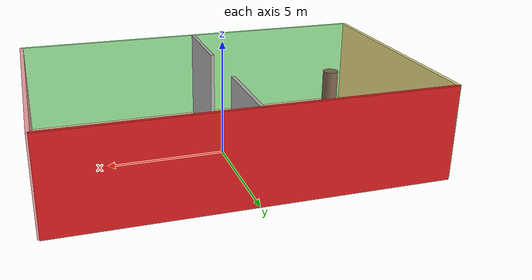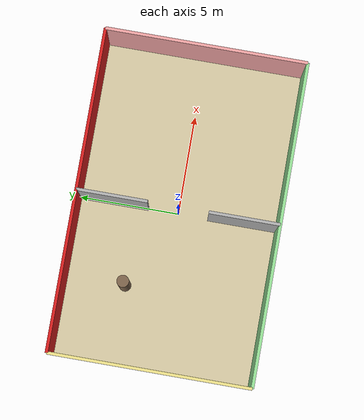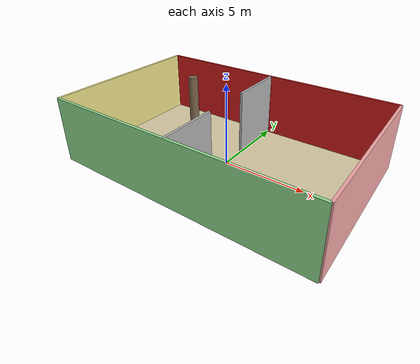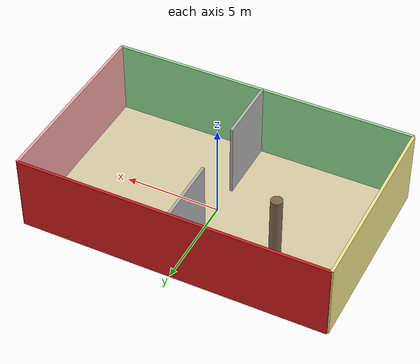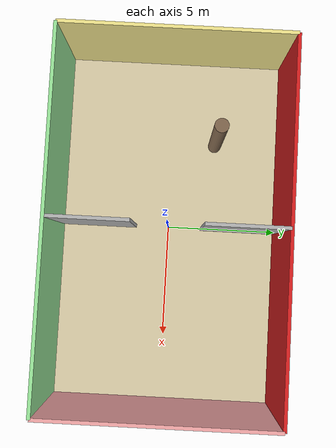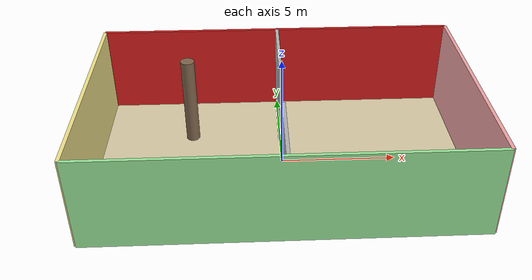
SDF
<sdf version="1.9">
 <world name="indoor_room">
  <physics name="1ms" type="ignored">
   <max_step_size>0.001</max_step_size>
   <real_time_factor>1.0</real_time_factor>
  </physics>
  <plugin filename="gz-sim-physics-system" name="gz::sim::systems::Physics"/>
  <plugin filename="gz-sim-scene-broadcaster-system" name="gz::sim::systems::SceneBroadcaster"/>
  <plugin filename="gz-sim-user-commands-system" name="gz::sim::systems::UserCommands"/>
  <plugin filename="gz-sim-sensors-system" name="gz::sim::systems::Sensors">
   <render_engine>ogre2</render_engine>
  </plugin>
  <plugin filename="gz-sim-imu-system" name="gz::sim::systems::Imu"/>
  <plugin filename="gz-sim-navsat-system" name="gz::sim::systems::NavSat"/>
  <spherical_coordinates>
   <latitude_deg>-35.363262</latitude_deg>
   <longitude_deg>149.165237</longitude_deg>
   <elevation>584</elevation>
   <heading_deg>0</heading_deg>
   <surface_model>EARTH_WGS84</surface_model>
  </spherical_coordinates>
  <light type="directional" name="main_light">
   <cast_shadows>false</cast_shadows>
   <pose>0 0 10 0 0 0</pose>
   <diffuse>1.0 1.0 1.0 1</diffuse>
   <specular>0.5 0.5 0.5 1</specular>
   <direction>0.1 0.1 -1</direction>
  </light>
  <model name="floor">
   <static>true</static>
   <link name="link">
    <collision name="c"><geometry><box><size>16 10 0.05</size></box></geometry></collision>
    <visual name="v">
     <geometry><box><size>16 10 0.05</size></box></geometry>
     <material>
      <ambient>0.85 0.80 0.65 1</ambient>
      <diffuse>0.85 0.80 0.65 1</diffuse>
      <specular>0.1 0.1 0.1 1</specular>
     </material>
    </visual>
   </link>
  </model>
  <model name="wall_north">
   <static>true</static>
   <pose>0 5.0 2.0 0 0 0</pose>
   <link name="link">
    <collision name="c"><geometry><box><size>16 0.15 4.0</size></box></geometry></collision>
    <visual name="v">
     <geometry><box><size>16 0.15 4.0</size></box></geometry>
     <material><ambient>0.85 0.12 0.12 1</ambient><diffuse>0.85 0.12 0.12 1</diffuse></material>
    </visual>
   </link>
  </model>
  <model name="wall_south">
   <static>true</static>
   <pose>0 -5.0 2.0 0 0 0</pose>
   <link name="link">
    <collision name="c"><geometry><box><size>16 0.15 4.0</size></box></geometry></collision>
    <visual name="v">
     <geometry><box><size>16 0.15 4.0</size></box></geometry>
     <material><ambient>0.6 0.9 0.6 1</ambient><diffuse>0.6 0.9 0.6 1</diffuse></material>
    </visual>
   </link>
  </model>
  <model name="wall_west">
   <static>true</static>
   <pose>-8.0 0 2.0 0 0 0</pose>
   <link name="link">
    <collision name="c"><geometry><box><size>0.15 10 4.0</size></box></geometry></collision>
    <visual name="v">
     <geometry><box><size>0.15 10 4.0</size></box></geometry>
     <material><ambient>0.95 0.90 0.55 1</ambient><diffuse>0.95 0.90 0.55 1</diffuse></material>
    </visual>
   </link>
  </model>
  <model name="wall_east">
   <static>true</static>
   <pose>8.0 0 2.0 0 0 0</pose>
   <link name="link">
    <collision name="c"><geometry><box><size>0.15 10 4.0</size></box></geometry></collision>
    <visual name="v">
     <geometry><box><size>0.15 10 4.0</size></box></geometry>
     <material><ambient>0.95 0.65 0.65 1</ambient><diffuse>0.95 0.65 0.65 1</diffuse></material>
    </visual>
   </link>
  </model>
  <model name="wall_divider_south">
   <static>true</static>
   <pose>0 -3.25 2.0 0 0 0</pose>
   <link name="link">
    <collision name="c"><geometry><box><size>0.15 3.5 4.0</size></box></geometry></collision>
    <visual name="v">
     <geometry><box><size>0.15 3.5 4.0</size></box></geometry>
     <material><ambient>0.7 0.7 0.7 1</ambient><diffuse>0.7 0.7 0.7 1</diffuse></material>
    </visual>
   </link>
  </model>
  <model name="wall_divider_north">
   <static>true</static>
   <pose>0 3.25 2.0 0 0 0</pose>
   <link name="link">
    <collision name="c"><geometry><box><size>0.15 3.5 4.0</size></box></geometry></collision>
    <visual name="v">
     <geometry><box><size>0.15 3.5 4.0</size></box></geometry>
     <material><ambient>0.7 0.7 0.7 1</ambient><diffuse>0.7 0.7 0.7 1</diffuse></material>
    </visual>
   </link>
  </model>
  <model name="column">
   <static>true</static>
   <pose>-4 2 2.0 0 0 0</pose>
   <link name="link">
    <collision name="c">
     <geometry><cylinder><radius>0.3</radius><length>4.0</length></cylinder></geometry>
    </collision>
    <visual name="v">
     <geometry><cylinder><radius>0.3</radius><length>4.0</length></cylinder></geometry>
     <material><ambient>0.5 0.4 0.3 1</ambient><diffuse>0.5 0.4 0.3 1</diffuse></material>
    </visual>
   </link>
  </model>
 </world>
</sdf>
